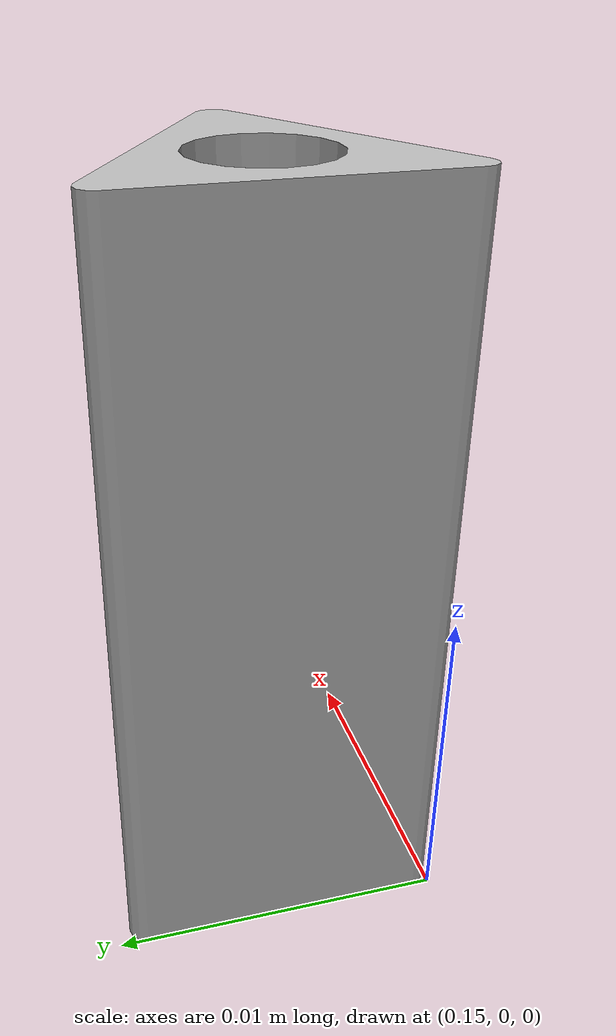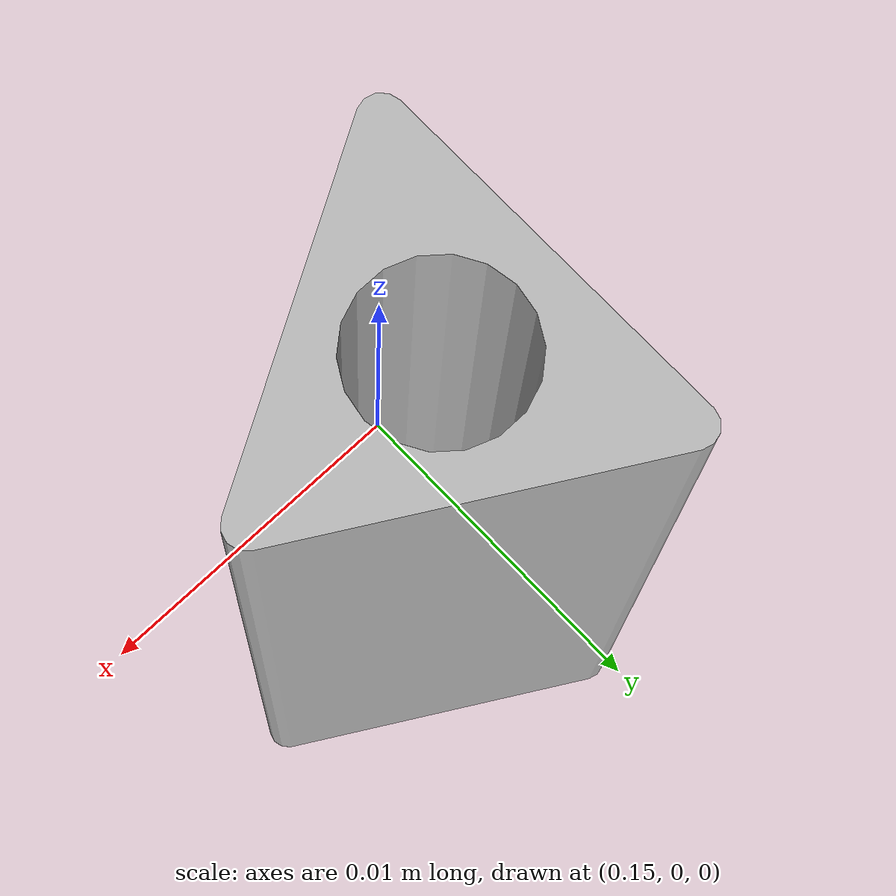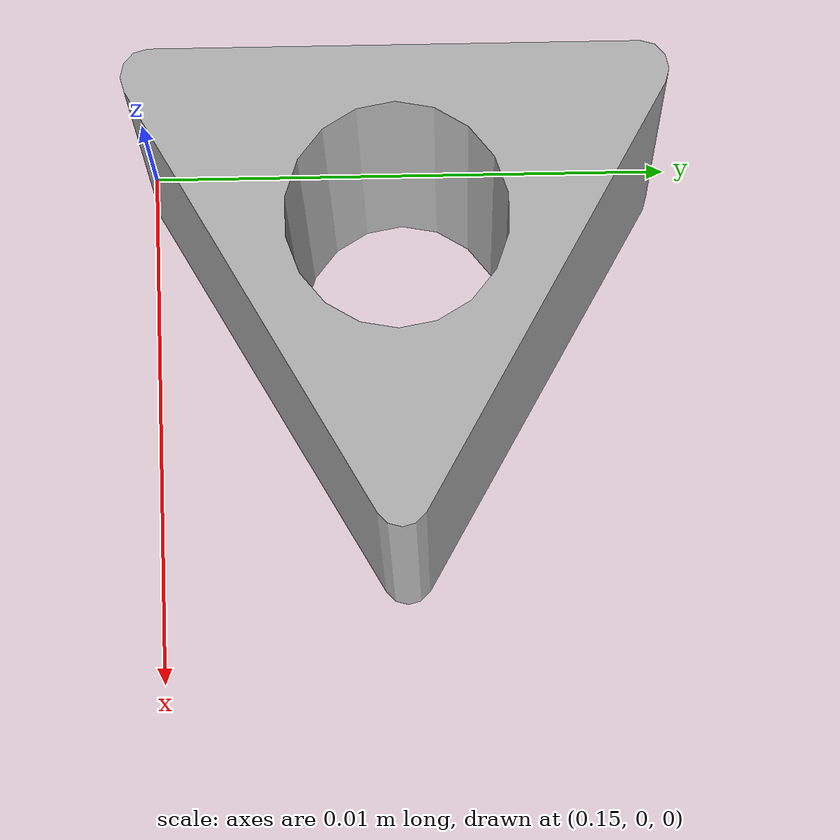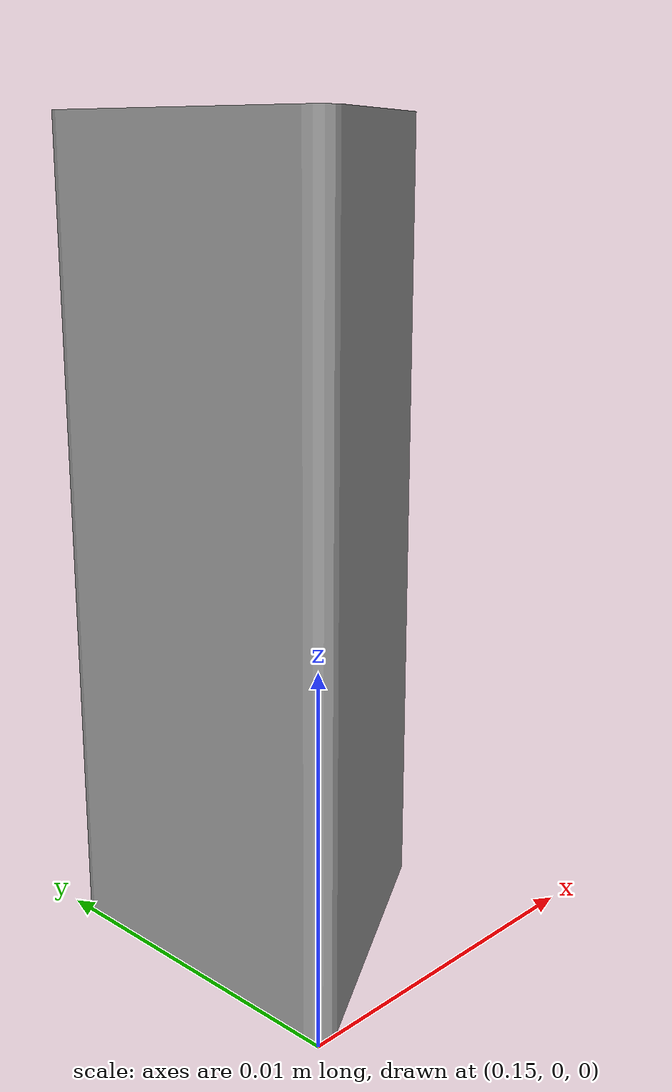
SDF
<?xml version="1.0"?>
<sdf version="1.4">
  <world name="default">

    <include>
      <uri>model://sun</uri>
    </include>

    <include>
      <uri>model://bead</uri>
    </include>

  </world>
</sdf>

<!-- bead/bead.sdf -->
<sdf version="1.5">
    <model name="bead">
        <static>false</static>
        <link name="link">
            <gravity>0</gravity>
            <pose>0.15 0 0 0 0 0</pose>
            <inertial>
                <mass>0.1</mass>
                <inertia>
                    <ixx>0.000250308</ixx>
                    <ixy>0.0</ixy>
                    <ixz>0.0</ixz>
                    <iyy>0.000250308</iyy>
                    <iyz>0.0</iyz>
                    <izz>0.0004802</izz>
                </inertia>
            </inertial>
            <collision name="collision">
                <geometry>
                    <mesh>
                        <scale>0.0005 0.0005 0.0005</scale>
                        <uri>model://bead/long_bead.dae</uri>
                    </mesh>
                </geometry>
                <surface>
                    <friction>
                        <ode>
                            <mu>0.5</mu>
                            <mu2>0.5</mu2>
                        </ode>
                    </friction>
                </surface>
            </collision>
            <visual name="visual">
                <geometry>
                    <mesh>
                        <scale>0.0005 0.0005 0.0005</scale>
                        <uri>model://bead/long_bead.dae</uri>
                    </mesh>
                </geometry>
            </visual>
        </link>
    </model>
</sdf>
